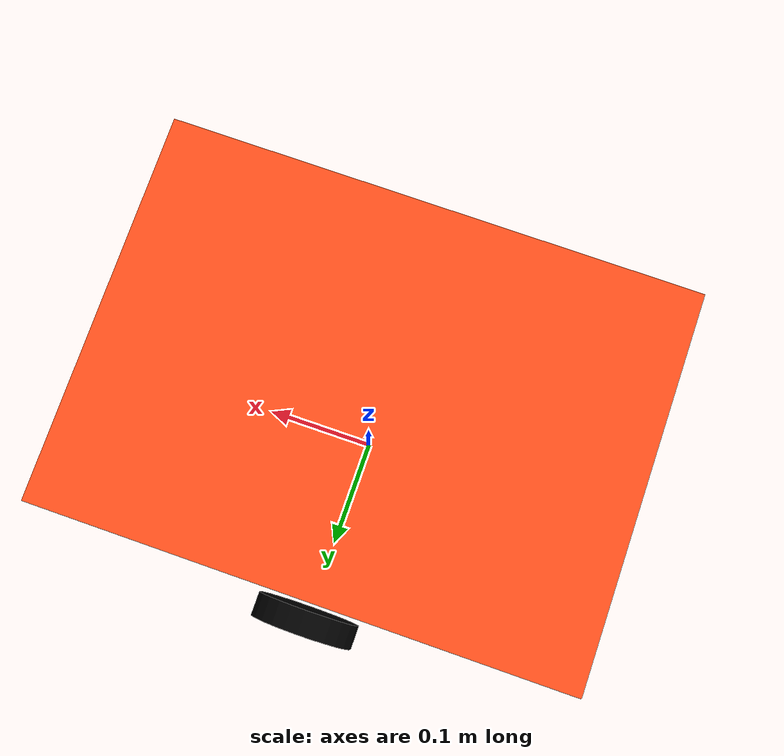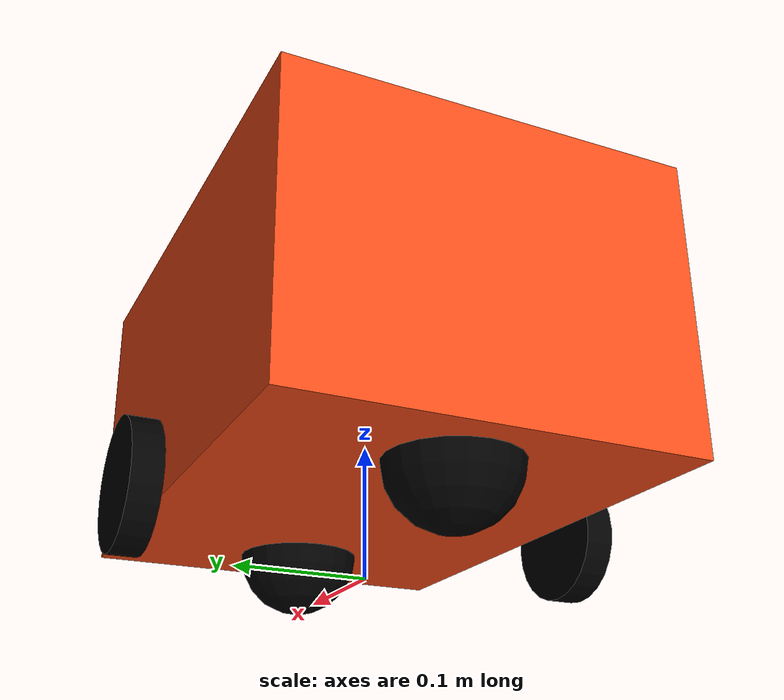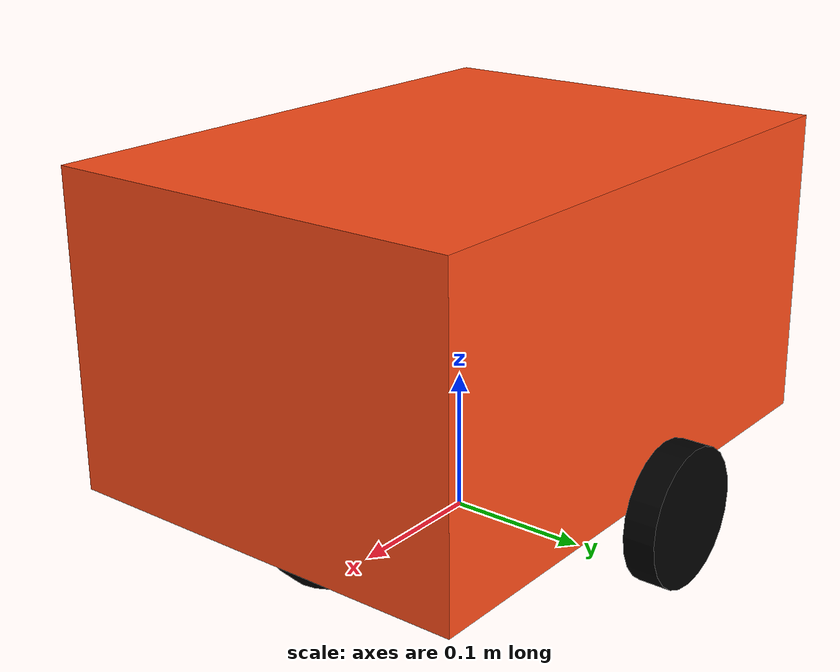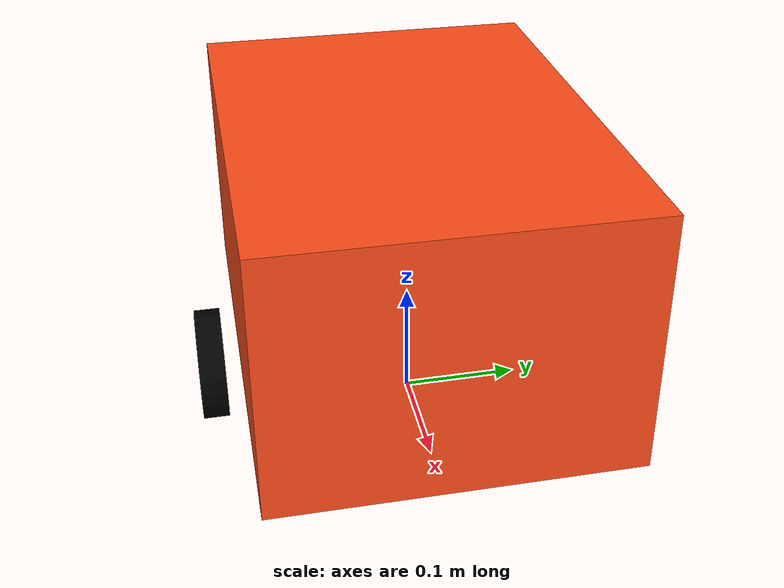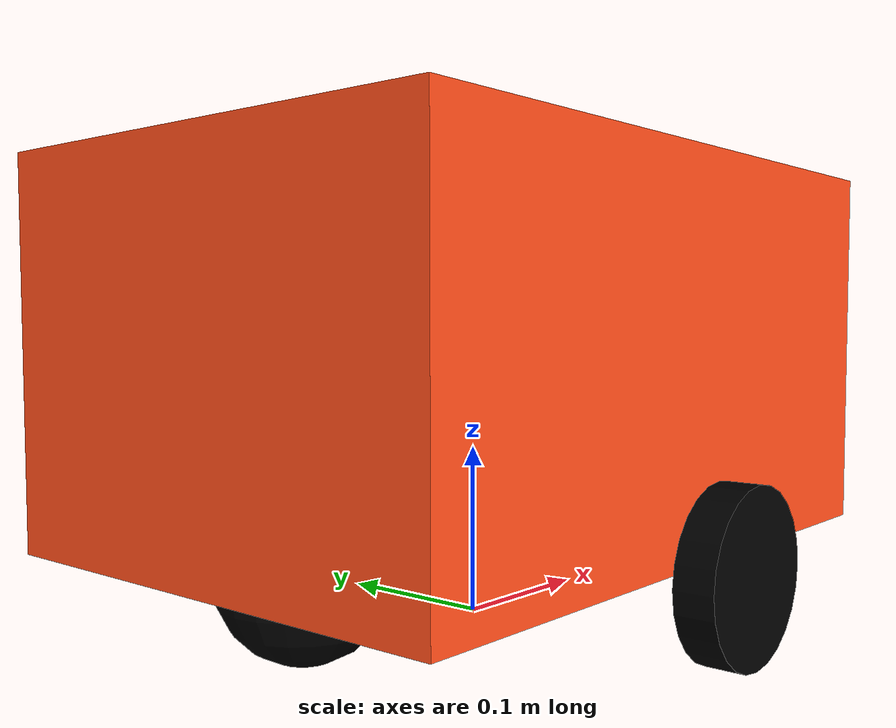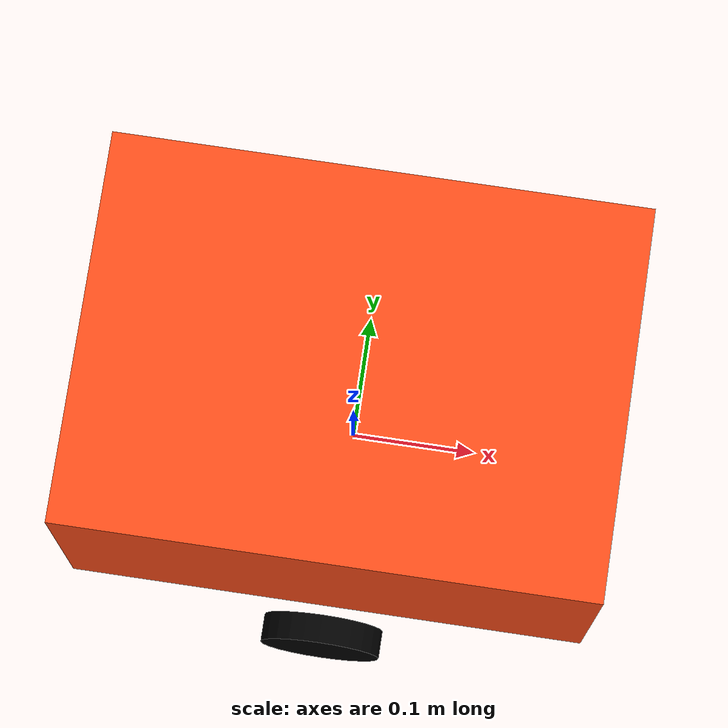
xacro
<?xml version="1.0"?>
<robot xmlns:xacro="http://www.ros.org/wiki/xacro">
    <xacro:include filename="inertial_macros.xacro"/>
    <material name="white">
        <color rgba="1 1 1 1" />
    </material>

    <material name="orange">
        <color rgba="1 0.3 0.1 1"/>
    </material>

    <material name="blue">
        <color rgba="0.2 0.2 1 1"/>
    </material>

    <material name="black">
        <color rgba="0 0 0 1"/>
    </material>

    <!-- BASE LINK -->
    <link name="base_link">
    </link>

    <!-- BASE FOOTPRINT LINK-->
    <joint name="base_footprint_joint" type="fixed">
        <parent link="base_link"/>
        <child link="base_footprint"/>
        <origin xyz="0 0 0" rpy="0 0 0"/>
    </joint>

    <link name="base_footprint">
    </link>

    <!-- CHASSIS LINK -->
    <joint name="chassis_joint" type="fixed">
        <parent link="base_link"/>
        <child link="chassis"/>
        <origin xyz="-0.205 0 0.0475"/>
    </joint>

    <link name="chassis">
        <visual>
            <origin xyz="0.205 0 0.11"/>
            <geometry>
                <box size="0.41 0.3 0.22"/>
            </geometry>
            <material name="orange"/>
        </visual>
        <collision>
            <origin xyz="0.205 0 0.11"/>
            <geometry>
                <box size="0.41 0.3 0.22"/>
            </geometry>
        </collision>
        <xacro:inertial_box mass="0.5" x="0.41" y="0.3" z="0.22">
            <origin xyz="0.205 0 0.11" rpy="0 0 0"/>
        </xacro:inertial_box>
    </link>

    <gazebo reference="chassis">
        <material>Gazebo/Orange</material>
    </gazebo>

    <!-- LEFT WHEEL LINK -->
    <joint name="left_wheel_joint" type="continuous">
        <parent link="chassis"/>
        <child link="left_wheel"/>
        <origin xyz="0.205 0.175 0" rpy="-${pi/2} 0 0" />
        <axis xyz="0 0 1"/>
    </joint>

    <link name="left_wheel">
        <visual>
            <geometry>
                <cylinder radius="0.0475" length="0.022"/>
            </geometry>
            <material name="black"/>
        </visual>
        <collision>
            <geometry>
                <cylinder radius="0.0475" length="0.022"/>
            </geometry>
        </collision>
        <xacro:inertial_cylinder mass="0.1" length="0.022" radius="0.0475">
            <origin xyz="0 0 0" rpy="0 0 0"/>
        </xacro:inertial_cylinder>
    </link>

    <gazebo reference="left_wheel">
        <material>Gazebo/Black</material>
    </gazebo>

    <!-- RIGHT WHEEL LINK -->
    <joint name="right_wheel_joint" type="continuous">
        <parent link="chassis"/>
        <child link="right_wheel"/>
        <origin xyz="0.205 -0.175 0" rpy="${pi/2} 0 0" />
        <axis xyz="0 0 -1"/>
    </joint>

    <link name="right_wheel">
        <visual>
            <geometry>
                <cylinder radius="0.0475" length="0.022"/>
            </geometry>
            <material name="black"/>
        </visual>
        <collision>
            <geometry>
                <cylinder radius="0.0475" length="0.022"/>
            </geometry>
        </collision>
        <xacro:inertial_cylinder mass="0.1" length="0.022" radius="0.0475">
            <origin xyz="0 0 0" rpy="0 0 0"/>
        </xacro:inertial_cylinder>
    </link>

    <gazebo reference="right_wheel">
        <material>Gazebo/Black</material>
    </gazebo>

     <!-- CASTER WHEEL LINK1-->

    <joint name="caster_wheel_joint1" type="fixed">
        <parent link="chassis"/>
        <child link="caster_wheel1"/>
        <origin xyz="0.07 0 0"/>
    </joint>

    <link name="caster_wheel1">
        <visual>
            <geometry>
                <sphere radius="0.0475"/>
            </geometry>
            <material name="black"/>
        </visual>
        <collision>
            <geometry>
                <sphere radius="0.0475"/>
            </geometry>
        </collision>
        <xacro:inertial_sphere mass="0.1" radius="0.0475">
            <origin xyz="0 0 0" rpy="0 0 0"/>
        </xacro:inertial_sphere>
    </link>

    <gazebo reference="caster_wheel1">
        <material>Gazebo/Black</material>
        <mu1 value="0.1"/>
        <mu2 value="0.1"/>
    </gazebo>

    <!-- CASTER WHEEL LINK2 -->

    <joint name="caster_wheel_joint2" type="fixed">
        <parent link="chassis"/>
        <child link="caster_wheel2"/>
        <origin xyz="0.34 0 0"/>
    </joint>

    <link name="caster_wheel2">
        <visual>
            <geometry>
                <sphere radius="0.0475"/>
            </geometry>
            <material name="black"/>
        </visual>
        <collision>
            <geometry>
                <sphere radius="0.0475"/>
            </geometry>
        </collision>
        <xacro:inertial_sphere mass="0.1" radius="0.0475">
            <origin xyz="0 0 0" rpy="0 0 0"/>
        </xacro:inertial_sphere>
    </link>

    <gazebo reference="caster_wheel2">
        <material>Gazebo/Black</material>
        <mu1 value="0.1"/>
        <mu2 value="0.1"/>
    </gazebo>

</robot>
